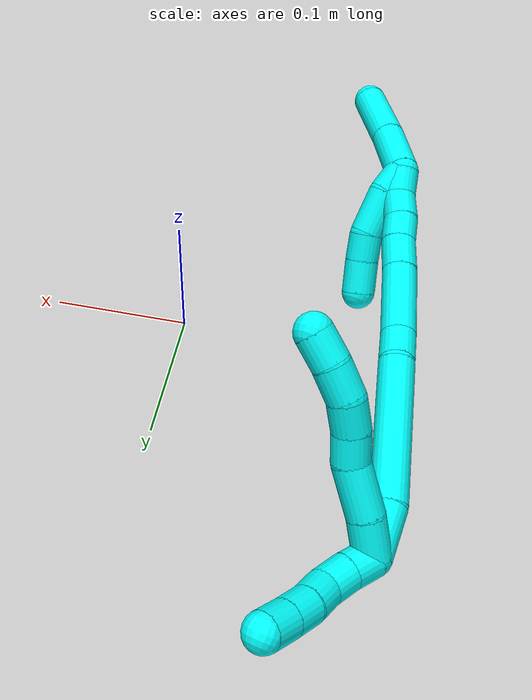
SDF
<sdf version="1.7">
 <world name="default">
  <model name="3">
   <static>0</static>
   <link name="3">
    <collision name="collision-cylinder-e_1_2_8">
     <pose>0.005785 0.00737 0.010661 -0.604857 0.419818 -0.132746</pose>
     <geometry><cylinder><radius>0.0125</radius><length>0.028386</length></cylinder></geometry>
     <surface>
      <friction><ode><mu>1.16</mu><mu2>1.16</mu2><slip1>0</slip1><slip2>0</slip2></ode></friction>
      <contact><ode><kp>1e+06</kp><kd>1</kd><max_vel>0</max_vel><min_depth>0.001</min_depth></ode></contact>
     </surface>
    </collision>
    <visual name="visual-cylinder-e_1_2_8">
     <pose>0.005785 0.00737 0.010661 -0.604857 0.419818 -0.132746</pose>
     <geometry><cylinder><radius>0.0125</radius><length>0.028386</length></cylinder></geometry>
     <material><ambient>0.003922 1 0.996078 1</ambient></material>
    </visual>
    <collision name="collision-cylinder-e_2_8_9">
     <pose>0.020754 0.022904 0.033999 -0.572151 0.547093 -0.164688</pose>
     <geometry><cylinder><radius>0.0125</radius><length>0.035308</length></cylinder></geometry>
     <surface>
      <friction><ode><mu>1.16</mu><mu2>1.16</mu2><slip1>0</slip1><slip2>0</slip2></ode></friction>
      <contact><ode><kp>1e+06</kp><kd>1</kd><max_vel>0</max_vel><min_depth>0.001</min_depth></ode></contact>
     </surface>
    </collision>
    <visual name="visual-cylinder-e_2_8_9">
     <pose>0.020754 0.022904 0.033999 -0.572151 0.547093 -0.164688</pose>
     <geometry><cylinder><radius>0.0125</radius><length>0.035308</length></cylinder></geometry>
     <material><ambient>0.003922 1 0.996078 1</ambient></material>
    </visual>
    <collision name="collision-cylinder-e_3_9_10">
     <pose>0.032492 0.036905 0.054849 -0.620121 0.249025 -0.080158</pose>
     <geometry><cylinder><radius>0.0125</radius><length>0.02073</length></cylinder></geometry>
     <surface>
      <friction><ode><mu>1.16</mu><mu2>1.16</mu2><slip1>0</slip1><slip2>0</slip2></ode></friction>
      <contact><ode><kp>1e+06</kp><kd>1</kd><max_vel>0</max_vel><min_depth>0.001</min_depth></ode></contact>
     </surface>
    </collision>
    <visual name="visual-cylinder-e_3_9_10">
     <pose>0.032492 0.036905 0.054849 -0.620121 0.249025 -0.080158</pose>
     <geometry><cylinder><radius>0.0125</radius><length>0.02073</length></cylinder></geometry>
     <material><ambient>0.003922 1 0.996078 1</ambient></material>
    </visual>
    <collision name="collision-cylinder-e_4_10_11">
     <pose>0.039053 0.049417 0.070484 -0.729914 0.380746 -0.146991</pose>
     <geometry><cylinder><radius>0.0125</radius><length>0.021564</length></cylinder></geometry>
     <surface>
      <friction><ode><mu>1.16</mu><mu2>1.16</mu2><slip1>0</slip1><slip2>0</slip2></ode></friction>
      <contact><ode><kp>1e+06</kp><kd>1</kd><max_vel>0</max_vel><min_depth>0.001</min_depth></ode></contact>
     </surface>
    </collision>
    <visual name="visual-cylinder-e_4_10_11">
     <pose>0.039053 0.049417 0.070484 -0.729914 0.380746 -0.146991</pose>
     <geometry><cylinder><radius>0.0125</radius><length>0.021564</length></cylinder></geometry>
     <material><ambient>0.003922 1 0.996078 1</ambient></material>
    </visual>
    <collision name="collision-cylinder-e_5_11_12">
     <pose>0.05006 0.061636 0.084976 -0.667678 0.663413 -0.237785</pose>
     <geometry><cylinder><radius>0.0125</radius><length>0.022734</length></cylinder></geometry>
     <surface>
      <friction><ode><mu>1.16</mu><mu2>1.16</mu2><slip1>0</slip1><slip2>0</slip2></ode></friction>
      <contact><ode><kp>1e+06</kp><kd>1</kd><max_vel>0</max_vel><min_depth>0.001</min_depth></ode></contact>
     </surface>
    </collision>
    <visual name="visual-cylinder-e_5_11_12">
     <pose>0.05006 0.061636 0.084976 -0.667678 0.663413 -0.237785</pose>
     <geometry><cylinder><radius>0.0125</radius><length>0.022734</length></cylinder></geometry>
     <material><ambient>0.003922 1 0.996078 1</ambient></material>
    </visual>
    <collision name="collision-cylinder-e_6_12_6">
     <pose>0.064688 0.070954 0.098395 -0.533592 0.799412 -0.229901</pose>
     <geometry><cylinder><radius>0.0125</radius><length>0.021278</length></cylinder></geometry>
     <surface>
      <friction><ode><mu>1.16</mu><mu2>1.16</mu2><slip1>0</slip1><slip2>0</slip2></ode></friction>
      <contact><ode><kp>1e+06</kp><kd>1</kd><max_vel>0</max_vel><min_depth>0.001</min_depth></ode></contact>
     </surface>
    </collision>
    <visual name="visual-cylinder-e_6_12_6">
     <pose>0.064688 0.070954 0.098395 -0.533592 0.799412 -0.229901</pose>
     <geometry><cylinder><radius>0.0125</radius><length>0.021278</length></cylinder></geometry>
     <material><ambient>0.003922 1 0.996078 1</ambient></material>
    </visual>
    <collision name="collision-cylinder-e_1_2_13">
     <pose>0.005424 0.004893 -0.006829 -2.51987 0.573347 -1.48487</pose>
     <geometry><cylinder><radius>0.0125</radius><length>0.02</length></cylinder></geometry>
     <surface>
      <friction><ode><mu>1.16</mu><mu2>1.16</mu2><slip1>0</slip1><slip2>0</slip2></ode></friction>
      <contact><ode><kp>1e+06</kp><kd>1</kd><max_vel>0</max_vel><min_depth>0.001</min_depth></ode></contact>
     </surface>
    </collision>
    <visual name="visual-cylinder-e_1_2_13">
     <pose>0.005424 0.004893 -0.006829 -2.51987 0.573347 -1.48487</pose>
     <geometry><cylinder><radius>0.0125</radius><length>0.02</length></cylinder></geometry>
     <material><ambient>0.003922 1 0.996078 1</ambient></material>
    </visual>
    <collision name="collision-cylinder-e_2_13_14">
     <pose>0.015271 0.015294 -0.020736 -2.48029 0.458074 -1.19322</pose>
     <geometry><cylinder><radius>0.0125</radius><length>0.02</length></cylinder></geometry>
     <surface>
      <friction><ode><mu>1.16</mu><mu2>1.16</mu2><slip1>0</slip1><slip2>0</slip2></ode></friction>
      <contact><ode><kp>1e+06</kp><kd>1</kd><max_vel>0</max_vel><min_depth>0.001</min_depth></ode></contact>
     </surface>
    </collision>
    <visual name="visual-cylinder-e_2_13_14">
     <pose>0.015271 0.015294 -0.020736 -2.48029 0.458074 -1.19322</pose>
     <geometry><cylinder><radius>0.0125</radius><length>0.02</length></cylinder></geometry>
     <material><ambient>0.003922 1 0.996078 1</ambient></material>
    </visual>
    <collision name="collision-cylinder-e_3_14_15">
     <pose>0.021905 0.028513 -0.033786 -2.22974 0.223049 -0.449041</pose>
     <geometry><cylinder><radius>0.0125</radius><length>0.02</length></cylinder></geometry>
     <surface>
      <friction><ode><mu>1.16</mu><mu2>1.16</mu2><slip1>0</slip1><slip2>0</slip2></ode></friction>
      <contact><ode><kp>1e+06</kp><kd>1</kd><max_vel>0</max_vel><min_depth>0.001</min_depth></ode></contact>
     </surface>
    </collision>
    <visual name="visual-cylinder-e_3_14_15">
     <pose>0.021905 0.028513 -0.033786 -2.22974 0.223049 -0.449041</pose>
     <geometry><cylinder><radius>0.0125</radius><length>0.02</length></cylinder></geometry>
     <material><ambient>0.003922 1 0.996078 1</ambient></material>
    </visual>
    <collision name="collision-cylinder-e_4_15_16">
     <pose>0.027771 0.043718 -0.045278 -2.2057 0.374067 -0.716588</pose>
     <geometry><cylinder><radius>0.0125</radius><length>0.02</length></cylinder></geometry>
     <surface>
      <friction><ode><mu>1.16</mu><mu2>1.16</mu2><slip1>0</slip1><slip2>0</slip2></ode></friction>
      <contact><ode><kp>1e+06</kp><kd>1</kd><max_vel>0</max_vel><min_depth>0.001</min_depth></ode></contact>
     </surface>
    </collision>
    <visual name="visual-cylinder-e_4_15_16">
     <pose>0.027771 0.043718 -0.045278 -2.2057 0.374067 -0.716588</pose>
     <geometry><cylinder><radius>0.0125</radius><length>0.02</length></cylinder></geometry>
     <material><ambient>0.003922 1 0.996078 1</ambient></material>
    </visual>
    <collision name="collision-cylinder-e_5_16_5">
     <pose>0.035252 0.058927 -0.055883 -2.1536 0.39261 -0.707484</pose>
     <geometry><cylinder><radius>0.0125</radius><length>0.02</length></cylinder></geometry>
     <surface>
      <friction><ode><mu>1.16</mu><mu2>1.16</mu2><slip1>0</slip1><slip2>0</slip2></ode></friction>
      <contact><ode><kp>1e+06</kp><kd>1</kd><max_vel>0</max_vel><min_depth>0.001</min_depth></ode></contact>
     </surface>
    </collision>
    <visual name="visual-cylinder-e_5_16_5">
     <pose>0.035252 0.058927 -0.055883 -2.1536 0.39261 -0.707484</pose>
     <geometry><cylinder><radius>0.0125</radius><length>0.02</length></cylinder></geometry>
     <material><ambient>0.003922 1 0.996078 1</ambient></material>
    </visual>
    <collision name="collision-cylinder-e_1_2_17">
     <pose>0.000844 -0.005109 0.01703 0.291435 0.047442 0.006964</pose>
     <geometry><cylinder><radius>0.0125</radius><length>0.0356</length></cylinder></geometry>
     <surface>
      <friction><ode><mu>1.16</mu><mu2>1.16</mu2><slip1>0</slip1><slip2>0</slip2></ode></friction>
      <contact><ode><kp>1e+06</kp><kd>1</kd><max_vel>0</max_vel><min_depth>0.001</min_depth></ode></contact>
     </surface>
    </collision>
    <visual name="visual-cylinder-e_1_2_17">
     <pose>0.000844 -0.005109 0.01703 0.291435 0.047442 0.006964</pose>
     <geometry><cylinder><radius>0.0125</radius><length>0.0356</length></cylinder></geometry>
     <material><ambient>0.003922 1 0.996078 1</ambient></material>
    </visual>
    <collision name="collision-cylinder-e_2_17_18">
     <pose>0.01598 -0.022402 0.081437 0.251737 0.284232 0.036206</pose>
     <geometry><cylinder><radius>0.0125</radius><length>0.101927</length></cylinder></geometry>
     <surface>
      <friction><ode><mu>1.16</mu><mu2>1.16</mu2><slip1>0</slip1><slip2>0</slip2></ode></friction>
      <contact><ode><kp>1e+06</kp><kd>1</kd><max_vel>0</max_vel><min_depth>0.001</min_depth></ode></contact>
     </surface>
    </collision>
    <visual name="visual-cylinder-e_2_17_18">
     <pose>0.01598 -0.022402 0.081437 0.251737 0.284232 0.036206</pose>
     <geometry><cylinder><radius>0.0125</radius><length>0.101927</length></cylinder></geometry>
     <material><ambient>0.003922 1 0.996078 1</ambient></material>
    </visual>
    <collision name="collision-cylinder-e_3_18_19">
     <pose>0.033367 -0.040215 0.139141 0.498944 0.257441 0.065932</pose>
     <geometry><cylinder><radius>0.0125</radius><length>0.024322</length></cylinder></geometry>
     <surface>
      <friction><ode><mu>1.16</mu><mu2>1.16</mu2><slip1>0</slip1><slip2>0</slip2></ode></friction>
      <contact><ode><kp>1e+06</kp><kd>1</kd><max_vel>0</max_vel><min_depth>0.001</min_depth></ode></contact>
     </surface>
    </collision>
    <visual name="visual-cylinder-e_3_18_19">
     <pose>0.033367 -0.040215 0.139141 0.498944 0.257441 0.065932</pose>
     <geometry><cylinder><radius>0.0125</radius><length>0.024322</length></cylinder></geometry>
     <material><ambient>0.003922 1 0.996078 1</ambient></material>
    </visual>
    <collision name="collision-cylinder-e_4_19_20">
     <pose>0.044704 -0.052284 0.174074 0.256075 0.313294 0.040662</pose>
     <geometry><cylinder><radius>0.0125</radius><length>0.053473</length></cylinder></geometry>
     <surface>
      <friction><ode><mu>1.16</mu><mu2>1.16</mu2><slip1>0</slip1><slip2>0</slip2></ode></friction>
      <contact><ode><kp>1e+06</kp><kd>1</kd><max_vel>0</max_vel><min_depth>0.001</min_depth></ode></contact>
     </surface>
    </collision>
    <visual name="visual-cylinder-e_4_19_20">
     <pose>0.044704 -0.052284 0.174074 0.256075 0.313294 0.040662</pose>
     <geometry><cylinder><radius>0.0125</radius><length>0.053473</length></cylinder></geometry>
     <material><ambient>0.003922 1 0.996078 1</ambient></material>
    </visual>
    <collision name="collision-cylinder-e_5_20_21">
     <pose>0.057366 -0.061525 0.209755 0.247487 0.369395 0.046466</pose>
     <geometry><cylinder><radius>0.0125</radius><length>0.0245</length></cylinder></geometry>
     <surface>
      <friction><ode><mu>1.16</mu><mu2>1.16</mu2><slip1>0</slip1><slip2>0</slip2></ode></friction>
      <contact><ode><kp>1e+06</kp><kd>1</kd><max_vel>0</max_vel><min_depth>0.001</min_depth></ode></contact>
     </surface>
    </collision>
    <visual name="visual-cylinder-e_5_20_21">
     <pose>0.057366 -0.061525 0.209755 0.247487 0.369395 0.046466</pose>
     <geometry><cylinder><radius>0.0125</radius><length>0.0245</length></cylinder></geometry>
     <material><ambient>0.003922 1 0.996078 1</ambient></material>
    </visual>
    <collision name="collision-cylinder-e_6_21_22">
     <pose>0.064239 -0.066361 0.230347 0.210845 0.246556 0.026221</pose>
     <geometry><cylinder><radius>0.0125</radius><length>0.020072</length></cylinder></geometry>
     <surface>
      <friction><ode><mu>1.16</mu><mu2>1.16</mu2><slip1>0</slip1><slip2>0</slip2></ode></friction>
      <contact><ode><kp>1e+06</kp><kd>1</kd><max_vel>0</max_vel><min_depth>0.001</min_depth></ode></contact>
     </surface>
    </collision>
    <visual name="visual-cylinder-e_6_21_22">
     <pose>0.064239 -0.066361 0.230347 0.210845 0.246556 0.026221</pose>
     <geometry><cylinder><radius>0.0125</radius><length>0.020072</length></cylinder></geometry>
     <material><ambient>0.003922 1 0.996078 1</ambient></material>
    </visual>
    <collision name="collision-cylinder-e_7_22_23">
     <pose>0.070807 -0.069814 0.248881 0.155797 0.423852 0.033585</pose>
     <geometry><cylinder><radius>0.0125</radius><length>0.020027</length></cylinder></geometry>
     <surface>
      <friction><ode><mu>1.16</mu><mu2>1.16</mu2><slip1>0</slip1><slip2>0</slip2></ode></friction>
      <contact><ode><kp>1e+06</kp><kd>1</kd><max_vel>0</max_vel><min_depth>0.001</min_depth></ode></contact>
     </surface>
    </collision>
    <visual name="visual-cylinder-e_7_22_23">
     <pose>0.070807 -0.069814 0.248881 0.155797 0.423852 0.033585</pose>
     <geometry><cylinder><radius>0.0125</radius><length>0.020027</length></cylinder></geometry>
     <material><ambient>0.003922 1 0.996078 1</ambient></material>
    </visual>
    <collision name="collision-cylinder-e_8_23_1">
     <pose>0.077065 -0.070943 0.267702 -0.029281 0.214804 -0.003157</pose>
     <geometry><cylinder><radius>0.0125</radius><length>0.020078</length></cylinder></geometry>
     <surface>
      <friction><ode><mu>1.16</mu><mu2>1.16</mu2><slip1>0</slip1><slip2>0</slip2></ode></friction>
      <contact><ode><kp>1e+06</kp><kd>1</kd><max_vel>0</max_vel><min_depth>0.001</min_depth></ode></contact>
     </surface>
    </collision>
    <visual name="visual-cylinder-e_8_23_1">
     <pose>0.077065 -0.070943 0.267702 -0.029281 0.214804 -0.003157</pose>
     <geometry><cylinder><radius>0.0125</radius><length>0.020078</length></cylinder></geometry>
     <material><ambient>0.003922 1 0.996078 1</ambient></material>
    </visual>
    <collision name="collision-cylinder-e_1_1_24">
     <pose>0.090683 -0.08102 0.294145 0.557067 0.529741 0.154824</pose>
     <geometry><cylinder><radius>0.0125</radius><length>0.045432</length></cylinder></geometry>
     <surface>
      <friction><ode><mu>1.16</mu><mu2>1.16</mu2><slip1>0</slip1><slip2>0</slip2></ode></friction>
      <contact><ode><kp>1e+06</kp><kd>1</kd><max_vel>0</max_vel><min_depth>0.001</min_depth></ode></contact>
     </surface>
    </collision>
    <visual name="visual-cylinder-e_1_1_24">
     <pose>0.090683 -0.08102 0.294145 0.557067 0.529741 0.154824</pose>
     <geometry><cylinder><radius>0.0125</radius><length>0.045432</length></cylinder></geometry>
     <material><ambient>0.003922 1 0.996078 1</ambient></material>
    </visual>
    <collision name="collision-cylinder-e_2_24_4">
     <pose>0.117104 -0.103865 0.329899 0.578467 0.579564 0.176997</pose>
     <geometry><cylinder><radius>0.0125</radius><length>0.054568</length></cylinder></geometry>
     <surface>
      <friction><ode><mu>1.16</mu><mu2>1.16</mu2><slip1>0</slip1><slip2>0</slip2></ode></friction>
      <contact><ode><kp>1e+06</kp><kd>1</kd><max_vel>0</max_vel><min_depth>0.001</min_depth></ode></contact>
     </surface>
    </collision>
    <visual name="visual-cylinder-e_2_24_4">
     <pose>0.117104 -0.103865 0.329899 0.578467 0.579564 0.176997</pose>
     <geometry><cylinder><radius>0.0125</radius><length>0.054568</length></cylinder></geometry>
     <material><ambient>0.003922 1 0.996078 1</ambient></material>
    </visual>
    <collision name="collision-cylinder-e_1_1_25">
     <pose>0.08237 -0.071986 0.267758 3.00594 0.311239 2.32436</pose>
     <geometry><cylinder><radius>0.0125</radius><length>0.02067</length></cylinder></geometry>
     <surface>
      <friction><ode><mu>1.16</mu><mu2>1.16</mu2><slip1>0</slip1><slip2>0</slip2></ode></friction>
      <contact><ode><kp>1e+06</kp><kd>1</kd><max_vel>0</max_vel><min_depth>0.001</min_depth></ode></contact>
     </surface>
    </collision>
    <visual name="visual-cylinder-e_1_1_25">
     <pose>0.08237 -0.071986 0.267758 3.00594 0.311239 2.32436</pose>
     <geometry><cylinder><radius>0.0125</radius><length>0.02067</length></cylinder></geometry>
     <material><ambient>0.003922 1 0.996078 1</ambient></material>
    </visual>
    <collision name="collision-cylinder-e_2_25_26">
     <pose>0.087286 -0.077726 0.241818 2.87573 0.104002 0.74237</pose>
     <geometry><cylinder><radius>0.0125</radius><length>0.033745</length></cylinder></geometry>
     <surface>
      <friction><ode><mu>1.16</mu><mu2>1.16</mu2><slip1>0</slip1><slip2>0</slip2></ode></friction>
      <contact><ode><kp>1e+06</kp><kd>1</kd><max_vel>0</max_vel><min_depth>0.001</min_depth></ode></contact>
     </surface>
    </collision>
    <visual name="visual-cylinder-e_2_25_26">
     <pose>0.087286 -0.077726 0.241818 2.87573 0.104002 0.74237</pose>
     <geometry><cylinder><radius>0.0125</radius><length>0.033745</length></cylinder></geometry>
     <material><ambient>0.003922 1 0.996078 1</ambient></material>
    </visual>
    <collision name="collision-cylinder-e_3_26_27">
     <pose>0.087642 -0.086652 0.216461 2.68375 -0.135743 -0.567715</pose>
     <geometry><cylinder><radius>0.0125</radius><length>0.020626</length></cylinder></geometry>
     <surface>
      <friction><ode><mu>1.16</mu><mu2>1.16</mu2><slip1>0</slip1><slip2>0</slip2></ode></friction>
      <contact><ode><kp>1e+06</kp><kd>1</kd><max_vel>0</max_vel><min_depth>0.001</min_depth></ode></contact>
     </surface>
    </collision>
    <visual name="visual-cylinder-e_3_26_27">
     <pose>0.087642 -0.086652 0.216461 2.68375 -0.135743 -0.567715</pose>
     <geometry><cylinder><radius>0.0125</radius><length>0.020626</length></cylinder></geometry>
     <material><ambient>0.003922 1 0.996078 1</ambient></material>
    </visual>
    <collision name="collision-cylinder-e_4_27_3">
     <pose>0.083763 -0.095946 0.196037 2.74027 -0.200351 -0.917939</pose>
     <geometry><cylinder><radius>0.0125</radius><length>0.024958</length></cylinder></geometry>
     <surface>
      <friction><ode><mu>1.16</mu><mu2>1.16</mu2><slip1>0</slip1><slip2>0</slip2></ode></friction>
      <contact><ode><kp>1e+06</kp><kd>1</kd><max_vel>0</max_vel><min_depth>0.001</min_depth></ode></contact>
     </surface>
    </collision>
    <visual name="visual-cylinder-e_4_27_3">
     <pose>0.083763 -0.095946 0.196037 2.74027 -0.200351 -0.917939</pose>
     <geometry><cylinder><radius>0.0125</radius><length>0.024958</length></cylinder></geometry>
     <material><ambient>0.003922 1 0.996078 1</ambient></material>
    </visual>
    <collision name="collision-sphere-3">
     <pose>0.08128 -0.100723 0.184779 0 -0 0</pose>
     <geometry><sphere><radius>0.0125</radius></sphere></geometry>
     <surface>
      <friction><ode><mu>1.16</mu><mu2>1.16</mu2><slip1>0</slip1><slip2>0</slip2></ode></friction>
      <contact><ode><kp>1e+06</kp><kd>1</kd><max_vel>0</max_vel><min_depth>0.001</min_depth></ode></contact>
     </surface>
    </collision>
    <visual name="visual-sphere-3">
     <pose>0.08128 -0.100723 0.184779 0 -0 0</pose>
     <geometry><sphere><radius>0.0125</radius></sphere></geometry>
     <material><ambient>0.003922 1 0.996078 1</ambient></material>
    </visual>
    <collision name="collision-sphere-27">
     <pose>0.086247 -0.091168 0.207295 0 -0 0</pose>
     <geometry><sphere><radius>0.0125</radius></sphere></geometry>
     <surface>
      <friction><ode><mu>1.16</mu><mu2>1.16</mu2><slip1>0</slip1><slip2>0</slip2></ode></friction>
      <contact><ode><kp>1e+06</kp><kd>1</kd><max_vel>0</max_vel><min_depth>0.001</min_depth></ode></contact>
     </surface>
    </collision>
    <visual name="visual-sphere-27">
     <pose>0.086247 -0.091168 0.207295 0 -0 0</pose>
     <geometry><sphere><radius>0.0125</radius></sphere></geometry>
     <material><ambient>0.003922 1 0.996078 1</ambient></material>
    </visual>
    <collision name="collision-sphere-26">
     <pose>0.089038 -0.082135 0.225627 0 -0 0</pose>
     <geometry><sphere><radius>0.0125</radius></sphere></geometry>
     <surface>
      <friction><ode><mu>1.16</mu><mu2>1.16</mu2><slip1>0</slip1><slip2>0</slip2></ode></friction>
      <contact><ode><kp>1e+06</kp><kd>1</kd><max_vel>0</max_vel><min_depth>0.001</min_depth></ode></contact>
     </surface>
    </collision>
    <visual name="visual-sphere-26">
     <pose>0.089038 -0.082135 0.225627 0 -0 0</pose>
     <geometry><sphere><radius>0.0125</radius></sphere></geometry>
     <material><ambient>0.003922 1 0.996078 1</ambient></material>
    </visual>
    <collision name="collision-sphere-25">
     <pose>0.085535 -0.073317 0.25801 0 -0 0</pose>
     <geometry><sphere><radius>0.0125</radius></sphere></geometry>
     <surface>
      <friction><ode><mu>1.16</mu><mu2>1.16</mu2><slip1>0</slip1><slip2>0</slip2></ode></friction>
      <contact><ode><kp>1e+06</kp><kd>1</kd><max_vel>0</max_vel><min_depth>0.001</min_depth></ode></contact>
     </surface>
    </collision>
    <visual name="visual-sphere-25">
     <pose>0.085535 -0.073317 0.25801 0 -0 0</pose>
     <geometry><sphere><radius>0.0125</radius></sphere></geometry>
     <material><ambient>0.003922 1 0.996078 1</ambient></material>
    </visual>
    <collision name="collision-sphere-4">
     <pose>0.132047 -0.116346 0.349013 0 -0 0</pose>
     <geometry><sphere><radius>0.0125</radius></sphere></geometry>
     <surface>
      <friction><ode><mu>1.16</mu><mu2>1.16</mu2><slip1>0</slip1><slip2>0</slip2></ode></friction>
      <contact><ode><kp>1e+06</kp><kd>1</kd><max_vel>0</max_vel><min_depth>0.001</min_depth></ode></contact>
     </surface>
    </collision>
    <visual name="visual-sphere-4">
     <pose>0.132047 -0.116346 0.349013 0 -0 0</pose>
     <geometry><sphere><radius>0.0125</radius></sphere></geometry>
     <material><ambient>0.003922 1 0.996078 1</ambient></material>
    </visual>
    <collision name="collision-sphere-24">
     <pose>0.102162 -0.091383 0.310784 0 -0 0</pose>
     <geometry><sphere><radius>0.0125</radius></sphere></geometry>
     <surface>
      <friction><ode><mu>1.16</mu><mu2>1.16</mu2><slip1>0</slip1><slip2>0</slip2></ode></friction>
      <contact><ode><kp>1e+06</kp><kd>1</kd><max_vel>0</max_vel><min_depth>0.001</min_depth></ode></contact>
     </surface>
    </collision>
    <visual name="visual-sphere-24">
     <pose>0.102162 -0.091383 0.310784 0 -0 0</pose>
     <geometry><sphere><radius>0.0125</radius></sphere></geometry>
     <material><ambient>0.003922 1 0.996078 1</ambient></material>
    </visual>
    <collision name="collision-sphere-1">
     <pose>0.079205 -0.070656 0.277506 0 -0 0</pose>
     <geometry><sphere><radius>0.0125</radius></sphere></geometry>
     <surface>
      <friction><ode><mu>1.16</mu><mu2>1.16</mu2><slip1>0</slip1><slip2>0</slip2></ode></friction>
      <contact><ode><kp>1e+06</kp><kd>1</kd><max_vel>0</max_vel><min_depth>0.001</min_depth></ode></contact>
     </surface>
    </collision>
    <visual name="visual-sphere-1">
     <pose>0.079205 -0.070656 0.277506 0 -0 0</pose>
     <geometry><sphere><radius>0.0125</radius></sphere></geometry>
     <material><ambient>0.003922 1 0.996078 1</ambient></material>
    </visual>
    <collision name="collision-sphere-23">
     <pose>0.074925 -0.07123 0.257898 0 -0 0</pose>
     <geometry><sphere><radius>0.0125</radius></sphere></geometry>
     <surface>
      <friction><ode><mu>1.16</mu><mu2>1.16</mu2><slip1>0</slip1><slip2>0</slip2></ode></friction>
      <contact><ode><kp>1e+06</kp><kd>1</kd><max_vel>0</max_vel><min_depth>0.001</min_depth></ode></contact>
     </surface>
    </collision>
    <visual name="visual-sphere-23">
     <pose>0.074925 -0.07123 0.257898 0 -0 0</pose>
     <geometry><sphere><radius>0.0125</radius></sphere></geometry>
     <material><ambient>0.003922 1 0.996078 1</ambient></material>
    </visual>
    <collision name="collision-sphere-22">
     <pose>0.066688 -0.068397 0.239864 0 -0 0</pose>
     <geometry><sphere><radius>0.0125</radius></sphere></geometry>
     <surface>
      <friction><ode><mu>1.16</mu><mu2>1.16</mu2><slip1>0</slip1><slip2>0</slip2></ode></friction>
      <contact><ode><kp>1e+06</kp><kd>1</kd><max_vel>0</max_vel><min_depth>0.001</min_depth></ode></contact>
     </surface>
    </collision>
    <visual name="visual-sphere-22">
     <pose>0.066688 -0.068397 0.239864 0 -0 0</pose>
     <geometry><sphere><radius>0.0125</radius></sphere></geometry>
     <material><ambient>0.003922 1 0.996078 1</ambient></material>
    </visual>
    <collision name="collision-sphere-21">
     <pose>0.061789 -0.064324 0.220831 0 -0 0</pose>
     <geometry><sphere><radius>0.0125</radius></sphere></geometry>
     <surface>
      <friction><ode><mu>1.16</mu><mu2>1.16</mu2><slip1>0</slip1><slip2>0</slip2></ode></friction>
      <contact><ode><kp>1e+06</kp><kd>1</kd><max_vel>0</max_vel><min_depth>0.001</min_depth></ode></contact>
     </surface>
    </collision>
    <visual name="visual-sphere-21">
     <pose>0.061789 -0.064324 0.220831 0 -0 0</pose>
     <geometry><sphere><radius>0.0125</radius></sphere></geometry>
     <material><ambient>0.003922 1 0.996078 1</ambient></material>
    </visual>
    <collision name="collision-sphere-12">
     <pose>0.05706 0.067182 0.092009 0 -0 0</pose>
     <geometry><sphere><radius>0.0125</radius></sphere></geometry>
     <surface>
      <friction><ode><mu>1.16</mu><mu2>1.16</mu2><slip1>0</slip1><slip2>0</slip2></ode></friction>
      <contact><ode><kp>1e+06</kp><kd>1</kd><max_vel>0</max_vel><min_depth>0.001</min_depth></ode></contact>
     </surface>
    </collision>
    <visual name="visual-sphere-12">
     <pose>0.05706 0.067182 0.092009 0 -0 0</pose>
     <geometry><sphere><radius>0.0125</radius></sphere></geometry>
     <material><ambient>0.003922 1 0.996078 1</ambient></material>
    </visual>
    <collision name="collision-sphere-11">
     <pose>0.04306 0.056091 0.077943 0 -0 0</pose>
     <geometry><sphere><radius>0.0125</radius></sphere></geometry>
     <surface>
      <friction><ode><mu>1.16</mu><mu2>1.16</mu2><slip1>0</slip1><slip2>0</slip2></ode></friction>
      <contact><ode><kp>1e+06</kp><kd>1</kd><max_vel>0</max_vel><min_depth>0.001</min_depth></ode></contact>
     </surface>
    </collision>
    <visual name="visual-sphere-11">
     <pose>0.04306 0.056091 0.077943 0 -0 0</pose>
     <geometry><sphere><radius>0.0125</radius></sphere></geometry>
     <material><ambient>0.003922 1 0.996078 1</ambient></material>
    </visual>
    <collision name="collision-sphere-10">
     <pose>0.035047 0.042742 0.063024 0 -0 0</pose>
     <geometry><sphere><radius>0.0125</radius></sphere></geometry>
     <surface>
      <friction><ode><mu>1.16</mu><mu2>1.16</mu2><slip1>0</slip1><slip2>0</slip2></ode></friction>
      <contact><ode><kp>1e+06</kp><kd>1</kd><max_vel>0</max_vel><min_depth>0.001</min_depth></ode></contact>
     </surface>
    </collision>
    <visual name="visual-sphere-10">
     <pose>0.035047 0.042742 0.063024 0 -0 0</pose>
     <geometry><sphere><radius>0.0125</radius></sphere></geometry>
     <material><ambient>0.003922 1 0.996078 1</ambient></material>
    </visual>
    <collision name="collision-sphere-9">
     <pose>0.029938 0.031067 0.046675 0 -0 0</pose>
     <geometry><sphere><radius>0.0125</radius></sphere></geometry>
     <surface>
      <friction><ode><mu>1.16</mu><mu2>1.16</mu2><slip1>0</slip1><slip2>0</slip2></ode></friction>
      <contact><ode><kp>1e+06</kp><kd>1</kd><max_vel>0</max_vel><min_depth>0.001</min_depth></ode></contact>
     </surface>
    </collision>
    <visual name="visual-sphere-9">
     <pose>0.029938 0.031067 0.046675 0 -0 0</pose>
     <geometry><sphere><radius>0.0125</radius></sphere></geometry>
     <material><ambient>0.003922 1 0.996078 1</ambient></material>
    </visual>
    <collision name="collision-sphere-2">
     <geometry><sphere><radius>0.0125</radius></sphere></geometry>
     <surface>
      <friction><ode><mu>1.16</mu><mu2>1.16</mu2><slip1>0</slip1><slip2>0</slip2></ode></friction>
      <contact><ode><kp>1e+06</kp><kd>1</kd><max_vel>0</max_vel><min_depth>0.001</min_depth></ode></contact>
     </surface>
    </collision>
    <visual name="visual-sphere-2">
     <geometry><sphere><radius>0.0125</radius></sphere></geometry>
     <material><ambient>0.003922 1 0.996078 1</ambient></material>
    </visual>
    <collision name="collision-sphere-19">
     <pose>0.036463 -0.045842 0.149468 0 -0 0</pose>
     <geometry><sphere><radius>0.0125</radius></sphere></geometry>
     <surface>
      <friction><ode><mu>1.16</mu><mu2>1.16</mu2><slip1>0</slip1><slip2>0</slip2></ode></friction>
      <contact><ode><kp>1e+06</kp><kd>1</kd><max_vel>0</max_vel><min_depth>0.001</min_depth></ode></contact>
     </surface>
    </collision>
    <visual name="visual-sphere-19">
     <pose>0.036463 -0.045842 0.149468 0 -0 0</pose>
     <geometry><sphere><radius>0.0125</radius></sphere></geometry>
     <material><ambient>0.003922 1 0.996078 1</ambient></material>
    </visual>
    <collision name="collision-sphere-8">
     <pose>0.01157 0.01474 0.021322 0 -0 0</pose>
     <geometry><sphere><radius>0.0125</radius></sphere></geometry>
     <surface>
      <friction><ode><mu>1.16</mu><mu2>1.16</mu2><slip1>0</slip1><slip2>0</slip2></ode></friction>
      <contact><ode><kp>1e+06</kp><kd>1</kd><max_vel>0</max_vel><min_depth>0.001</min_depth></ode></contact>
     </surface>
    </collision>
    <visual name="visual-sphere-8">
     <pose>0.01157 0.01474 0.021322 0 -0 0</pose>
     <geometry><sphere><radius>0.0125</radius></sphere></geometry>
     <material><ambient>0.003922 1 0.996078 1</ambient></material>
    </visual>
    <collision name="collision-sphere-6">
     <pose>0.072315 0.074726 0.10478 0 -0 0</pose>
     <geometry><sphere><radius>0.0125</radius></sphere></geometry>
     <surface>
      <friction><ode><mu>1.16</mu><mu2>1.16</mu2><slip1>0</slip1><slip2>0</slip2></ode></friction>
      <contact><ode><kp>1e+06</kp><kd>1</kd><max_vel>0</max_vel><min_depth>0.001</min_depth></ode></contact>
     </surface>
    </collision>
    <visual name="visual-sphere-6">
     <pose>0.072315 0.074726 0.10478 0 -0 0</pose>
     <geometry><sphere><radius>0.0125</radius></sphere></geometry>
     <material><ambient>0.003922 1 0.996078 1</ambient></material>
    </visual>
    <collision name="collision-sphere-13">
     <pose>0.010849 0.009786 -0.013658 0 -0 0</pose>
     <geometry><sphere><radius>0.0125</radius></sphere></geometry>
     <surface>
      <friction><ode><mu>1.16</mu><mu2>1.16</mu2><slip1>0</slip1><slip2>0</slip2></ode></friction>
      <contact><ode><kp>1e+06</kp><kd>1</kd><max_vel>0</max_vel><min_depth>0.001</min_depth></ode></contact>
     </surface>
    </collision>
    <visual name="visual-sphere-13">
     <pose>0.010849 0.009786 -0.013658 0 -0 0</pose>
     <geometry><sphere><radius>0.0125</radius></sphere></geometry>
     <material><ambient>0.003922 1 0.996078 1</ambient></material>
    </visual>
    <collision name="collision-sphere-14">
     <pose>0.019693 0.020803 -0.027814 0 -0 0</pose>
     <geometry><sphere><radius>0.0125</radius></sphere></geometry>
     <surface>
      <friction><ode><mu>1.16</mu><mu2>1.16</mu2><slip1>0</slip1><slip2>0</slip2></ode></friction>
      <contact><ode><kp>1e+06</kp><kd>1</kd><max_vel>0</max_vel><min_depth>0.001</min_depth></ode></contact>
     </surface>
    </collision>
    <visual name="visual-sphere-14">
     <pose>0.019693 0.020803 -0.027814 0 -0 0</pose>
     <geometry><sphere><radius>0.0125</radius></sphere></geometry>
     <material><ambient>0.003922 1 0.996078 1</ambient></material>
    </visual>
    <collision name="collision-sphere-15">
     <pose>0.024117 0.036224 -0.039757 0 -0 0</pose>
     <geometry><sphere><radius>0.0125</radius></sphere></geometry>
     <surface>
      <friction><ode><mu>1.16</mu><mu2>1.16</mu2><slip1>0</slip1><slip2>0</slip2></ode></friction>
      <contact><ode><kp>1e+06</kp><kd>1</kd><max_vel>0</max_vel><min_depth>0.001</min_depth></ode></contact>
     </surface>
    </collision>
    <visual name="visual-sphere-15">
     <pose>0.024117 0.036224 -0.039757 0 -0 0</pose>
     <geometry><sphere><radius>0.0125</radius></sphere></geometry>
     <material><ambient>0.003922 1 0.996078 1</ambient></material>
    </visual>
    <collision name="collision-sphere-16">
     <pose>0.031426 0.051213 -0.050798 0 -0 0</pose>
     <geometry><sphere><radius>0.0125</radius></sphere></geometry>
     <surface>
      <friction><ode><mu>1.16</mu><mu2>1.16</mu2><slip1>0</slip1><slip2>0</slip2></ode></friction>
      <contact><ode><kp>1e+06</kp><kd>1</kd><max_vel>0</max_vel><min_depth>0.001</min_depth></ode></contact>
     </surface>
    </collision>
    <visual name="visual-sphere-16">
     <pose>0.031426 0.051213 -0.050798 0 -0 0</pose>
     <geometry><sphere><radius>0.0125</radius></sphere></geometry>
     <material><ambient>0.003922 1 0.996078 1</ambient></material>
    </visual>
    <collision name="collision-sphere-5">
     <pose>0.039078 0.066641 -0.060968 0 -0 0</pose>
     <geometry><sphere><radius>0.0125</radius></sphere></geometry>
     <surface>
      <friction><ode><mu>1.16</mu><mu2>1.16</mu2><slip1>0</slip1><slip2>0</slip2></ode></friction>
      <contact><ode><kp>1e+06</kp><kd>1</kd><max_vel>0</max_vel><min_depth>0.001</min_depth></ode></contact>
     </surface>
    </collision>
    <visual name="visual-sphere-5">
     <pose>0.039078 0.066641 -0.060968 0 -0 0</pose>
     <geometry><sphere><radius>0.0125</radius></sphere></geometry>
     <material><ambient>0.003922 1 0.996078 1</ambient></material>
    </visual>
    <collision name="collision-sphere-17">
     <pose>0.001688 -0.010217 0.03406 0 -0 0</pose>
     <geometry><sphere><radius>0.0125</radius></sphere></geometry>
     <surface>
      <friction><ode><mu>1.16</mu><mu2>1.16</mu2><slip1>0</slip1><slip2>0</slip2></ode></friction>
      <contact><ode><kp>1e+06</kp><kd>1</kd><max_vel>0</max_vel><min_depth>0.001</min_depth></ode></contact>
     </surface>
    </collision>
    <visual name="visual-sphere-17">
     <pose>0.001688 -0.010217 0.03406 0 -0 0</pose>
     <geometry><sphere><radius>0.0125</radius></sphere></geometry>
     <material><ambient>0.003922 1 0.996078 1</ambient></material>
    </visual>
    <collision name="collision-sphere-18">
     <pose>0.030271 -0.034587 0.128814 0 -0 0</pose>
     <geometry><sphere><radius>0.0125</radius></sphere></geometry>
     <surface>
      <friction><ode><mu>1.16</mu><mu2>1.16</mu2><slip1>0</slip1><slip2>0</slip2></ode></friction>
      <contact><ode><kp>1e+06</kp><kd>1</kd><max_vel>0</max_vel><min_depth>0.001</min_depth></ode></contact>
     </surface>
    </collision>
    <visual name="visual-sphere-18">
     <pose>0.030271 -0.034587 0.128814 0 -0 0</pose>
     <geometry><sphere><radius>0.0125</radius></sphere></geometry>
     <material><ambient>0.003922 1 0.996078 1</ambient></material>
    </visual>
    <collision name="collision-sphere-20">
     <pose>0.052944 -0.058727 0.198679 0 -0 0</pose>
     <geometry><sphere><radius>0.0125</radius></sphere></geometry>
     <surface>
      <friction><ode><mu>1.16</mu><mu2>1.16</mu2><slip1>0</slip1><slip2>0</slip2></ode></friction>
      <contact><ode><kp>1e+06</kp><kd>1</kd><max_vel>0</max_vel><min_depth>0.001</min_depth></ode></contact>
     </surface>
    </collision>
    <visual name="visual-sphere-20">
     <pose>0.052944 -0.058727 0.198679 0 -0 0</pose>
     <geometry><sphere><radius>0.0125</radius></sphere></geometry>
     <material><ambient>0.003922 1 0.996078 1</ambient></material>
    </visual>
    <inertial>
     <pose>0.048823 -0.027675 0.134766 0 -0 0</pose>
     <mass>0.75</mass>
     <inertia><ixx>0.00018</ixx><ixy>0</ixy><ixz>0</ixz><iyy>0.000149</iyy><iyz>0</iyz><izz>-2e-06</izz></inertia>
    </inertial>
   </link>
   <pose>-0.162162 0.173534 0.0202 1.12081 -0.01913 -0.209516</pose>
  </model>
 </world>
</sdf>
